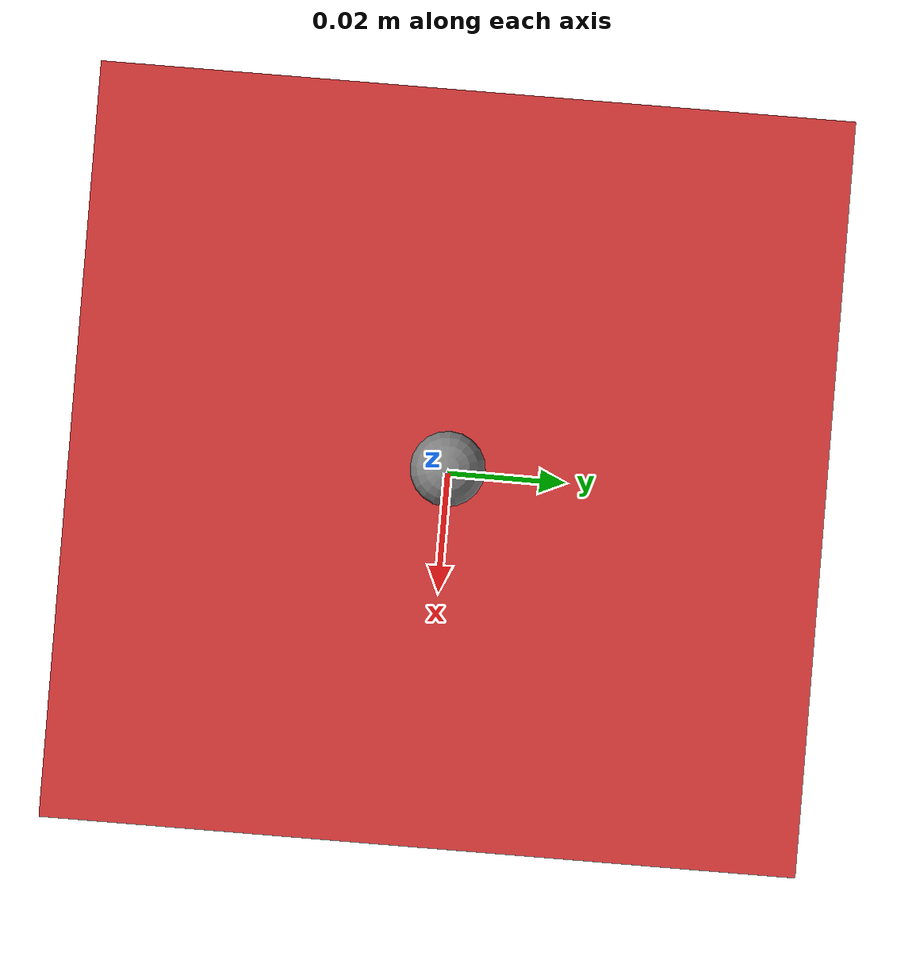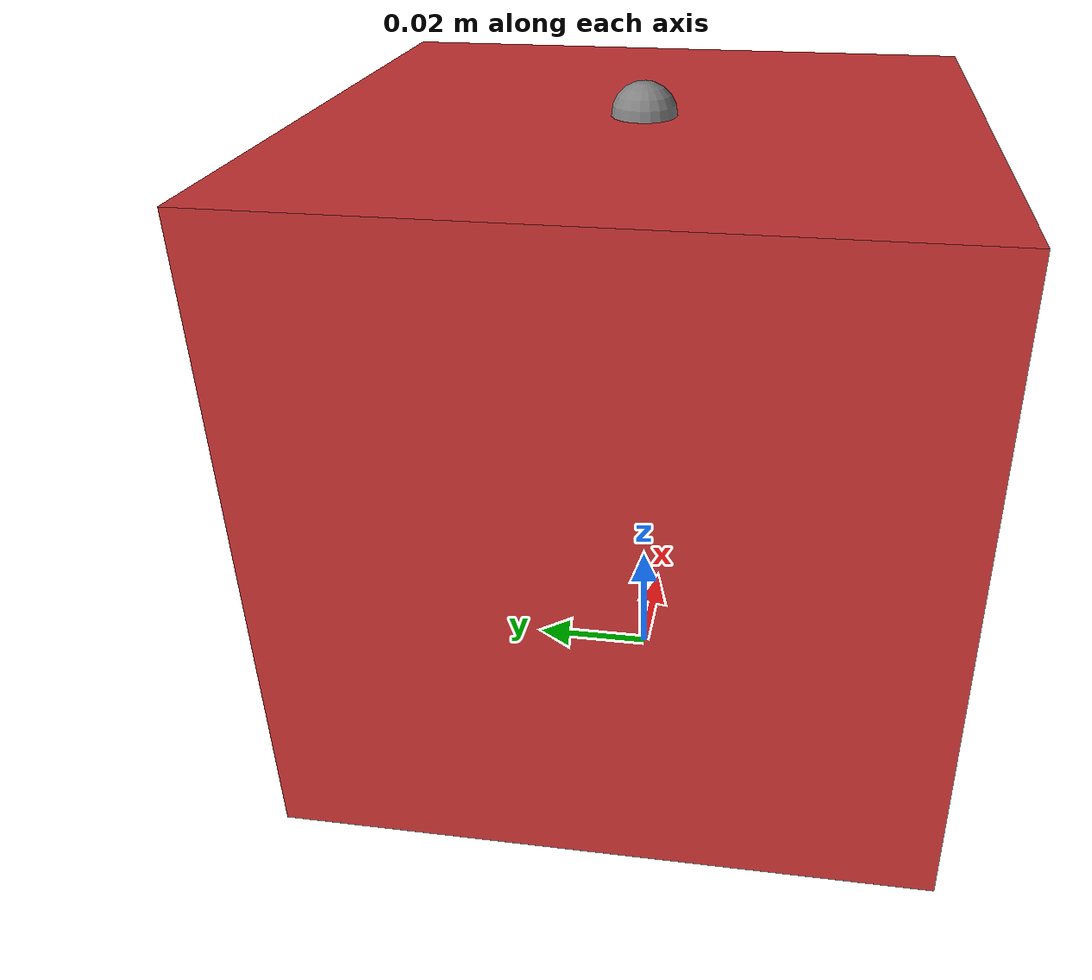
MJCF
<mujoco model="cube">
  <compiler angle="radian"/>
  <default>
    <default class="prop">
      <geom rgba="0.8 0.2 0.2 1" friction="0.9 0.005 0.0001"/>
    </default>
  </default>
  <asset>
    <material name="skin" rgba="0.2 0.6 0.9 1"/>
  </asset>
  <worldbody>
    <body name="root" pos="0 0 0.05">
      <freejoint name="free"/>
      <geom name="box" class="prop" type="box" size="0.05 0.05 0.05" material="skin"/>
      <site name="tip" pos="0 0 0.05" size="0.005"/>
    </body>
  </worldbody>
</mujoco>
